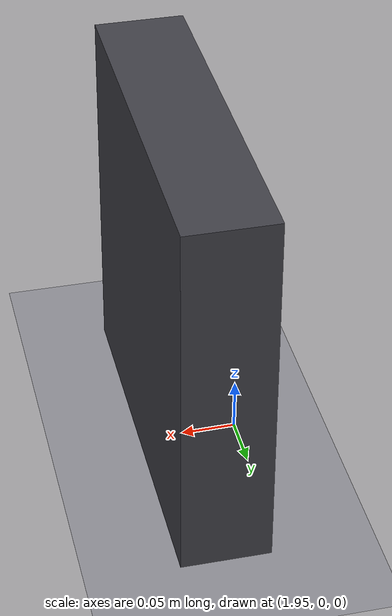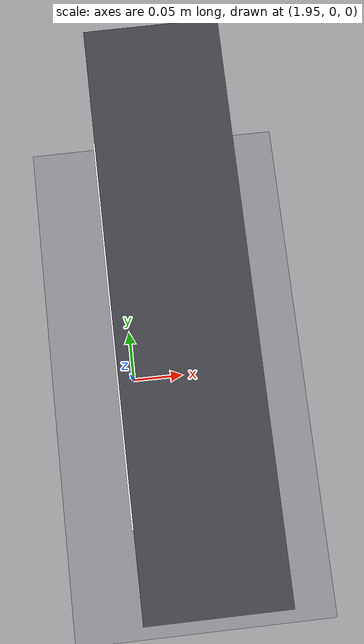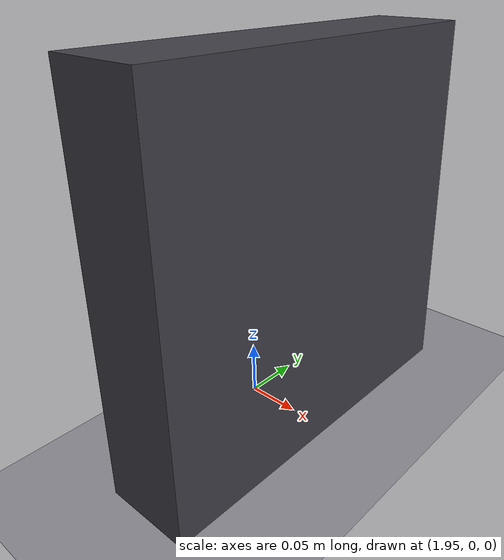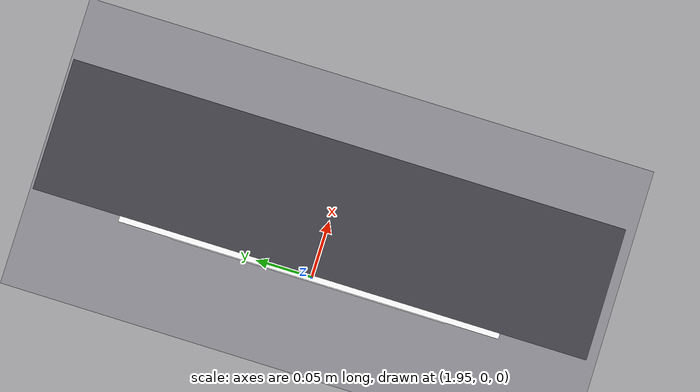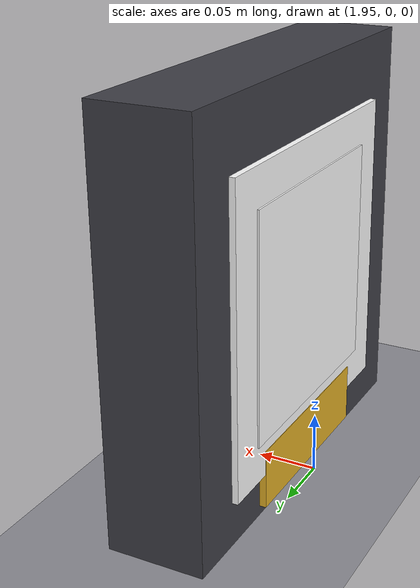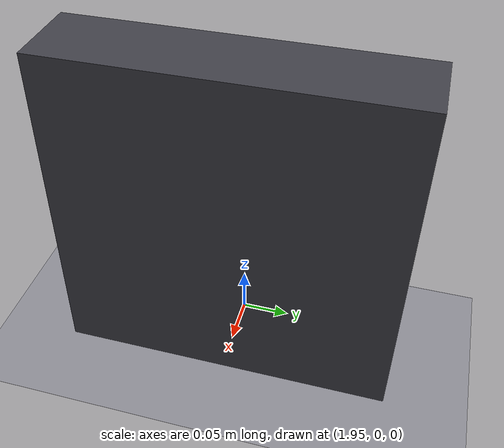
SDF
<?xml version="1.0" ?>
<sdf version="1.6">
  <world name="docking_world">

    <!-- Sun defined inline rather than model://sun, so the world never touches
         the online model database (which stalls for ~30 s on a cold WSL box). -->
    <light name="sun" type="directional">
      <cast_shadows>true</cast_shadows>
      <pose>0 0 10 0 0 0</pose>
      <diffuse>0.9 0.9 0.9 1</diffuse>
      <specular>0.2 0.2 0.2 1</specular>
      <attenuation>
        <range>1000</range>
        <constant>0.9</constant>
        <linear>0.01</linear>
        <quadratic>0.001</quadratic>
      </attenuation>
      <direction>-0.4 0.3 -0.9</direction>
    </light>

    <!-- Ground plane defined inline for the same reason -->
    <model name="ground_plane">
      <static>true</static>
      <link name="link">
        <collision name="collision">
          <geometry>
            <plane><normal>0 0 1</normal><size>100 100</size></plane>
          </geometry>
          <surface>
            <friction>
              <ode><mu>1.0</mu><mu2>1.0</mu2></ode>
            </friction>
            <contact>
              <ode><kp>1e6</kp><kd>100</kd><max_vel>0.1</max_vel><min_depth>0.001</min_depth></ode>
            </contact>
          </surface>
        </collision>
        <visual name="visual">
          <cast_shadows>false</cast_shadows>
          <geometry>
            <plane><normal>0 0 1</normal><size>100 100</size></plane>
          </geometry>
          <material>
            <ambient>0.35 0.35 0.38 1</ambient>
            <diffuse>0.55 0.55 0.58 1</diffuse>
          </material>
        </visual>
      </link>
    </model>

    <!-- Docking station 2.0 m ahead of the robot, marker facing back at it.
         yaw = pi turns the model's +X (the marker face) towards the origin. -->
    <include>
      <uri>model://aruco_dock_station</uri>
      <name>docking_station</name>
      <pose>2.0 0.0 0.0 0 0 3.14159265</pose>
    </include>

    <plugin name="gazebo_ros_state" filename="libgazebo_ros_state.so">
      <ros>
        <namespace>/gazebo</namespace>
      </ros>
      <update_rate>20.0</update_rate>
    </plugin>

    <scene>
      <ambient>0.5 0.5 0.5 1</ambient>
      <background>0.7 0.75 0.8 1</background>
      <shadows>true</shadows>
    </scene>

    <physics type="ode">
      <max_step_size>0.001</max_step_size>
      <real_time_factor>1</real_time_factor>
      <real_time_update_rate>1000</real_time_update_rate>
      <ode>
        <solver>
          <type>quick</type>
          <iters>75</iters>
          <sor>1.3</sor>
        </solver>
        <constraints>
          <cfm>0.0</cfm>
          <erp>0.2</erp>
          <contact_max_correcting_vel>100.0</contact_max_correcting_vel>
          <contact_surface_layer>0.001</contact_surface_layer>
        </constraints>
      </ode>
    </physics>

    <gui fullscreen='0'>
      <camera name='user_camera'>
        <pose>-1.2 -2.2 1.6 0 0.35 0.95</pose>
        <view_controller>orbit</view_controller>
      </camera>
    </gui>
  </world>
</sdf>

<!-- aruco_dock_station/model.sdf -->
<sdf version="1.6">
  <model name="aruco_dock_station">
    <static>true</static>
    <link name="link">

      <!-- Dock post -->
      <visual name="dock_post_visual">
        <pose>0 0 0.17 0 0 0</pose>
        <geometry>
          <box><size>0.08 0.34 0.34</size></box>
        </geometry>
        <material>
          <ambient>0.15 0.15 0.17 1.0</ambient>
          <diffuse>0.25 0.25 0.28 1.0</diffuse>
          <specular>0.1 0.1 0.1 1.0</specular>
        </material>
      </visual>
      <collision name="dock_post_collision">
        <pose>0 0 0.17 0 0 0</pose>
        <geometry>
          <box><size>0.08 0.34 0.34</size></box>
        </geometry>
        <surface>
          <friction><ode><mu>0.8</mu><mu2>0.8</mu2></ode></friction>
        </surface>
      </collision>

      <!-- White backing board: gives the marker a clean quiet zone -->
      <visual name="marker_backing_visual">
        <pose>0.0425 0 0.162 0 0 0</pose>
        <geometry>
          <box><size>0.005 0.25 0.25</size></box>
        </geometry>
        <material>
          <ambient>0.9 0.9 0.9 1.0</ambient>
          <diffuse>1.0 1.0 1.0 1.0</diffuse>
        </material>
      </visual>

      <!-- Marker plate: 0.1875 m wide => 0.150 m of printed marker -->
      <visual name="aruco_marker_visual">
        <pose>0.0455 0 0.162 0 0 0</pose>
        <geometry>
          <box><size>0.002 0.1875 0.1875</size></box>
        </geometry>
        <material>
          <script>
            <uri>model://aruco_dock_station/materials/scripts</uri>
            <uri>model://aruco_dock_station/materials/textures</uri>
            <name>Aruco/Marker42</name>
          </script>
          <!-- Unlit-ish so the marker stays high contrast regardless of the sun angle -->
          <ambient>1 1 1 1</ambient>
          <diffuse>1 1 1 1</diffuse>
          <specular>0 0 0 1</specular>
        </material>
      </visual>

      <!-- Charging plate the robot noses up to -->
      <visual name="contact_plate_visual">
        <pose>0.0425 0 0.033 0 0 0</pose>
        <geometry>
          <box><size>0.006 0.16 0.05</size></box>
        </geometry>
        <material>
          <ambient>0.6 0.45 0.1 1.0</ambient>
          <diffuse>0.9 0.7 0.15 1.0</diffuse>
        </material>
      </visual>

    </link>
  </model>
</sdf>
